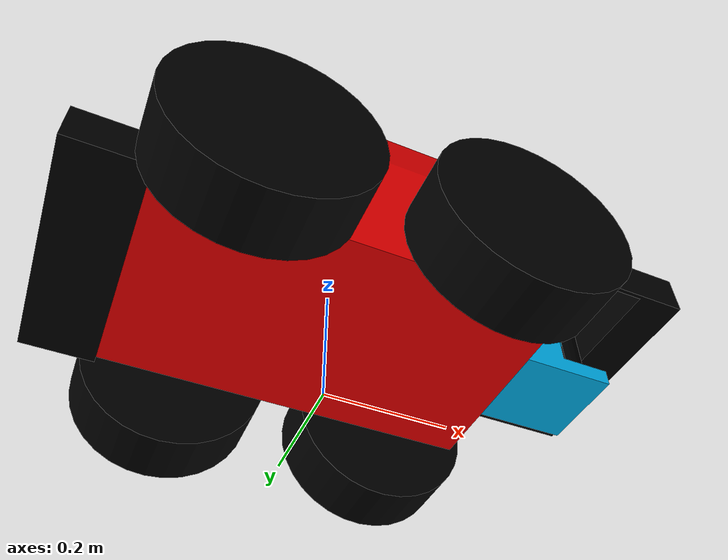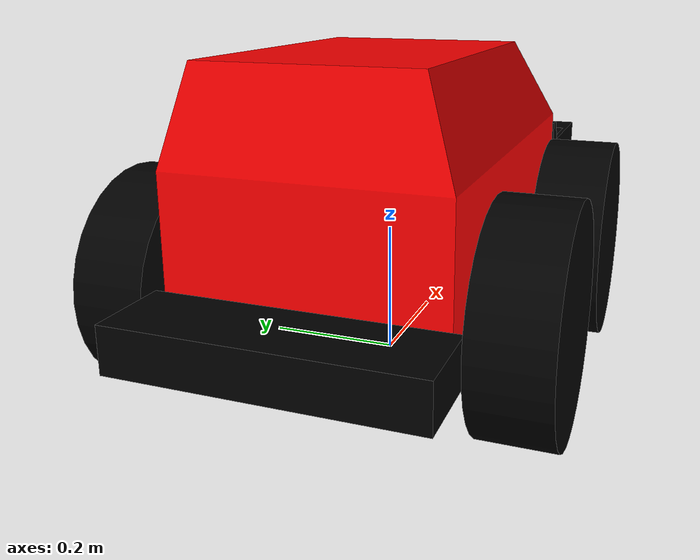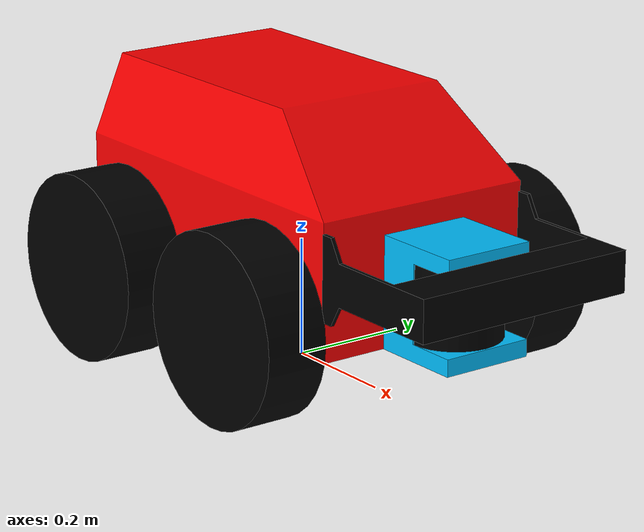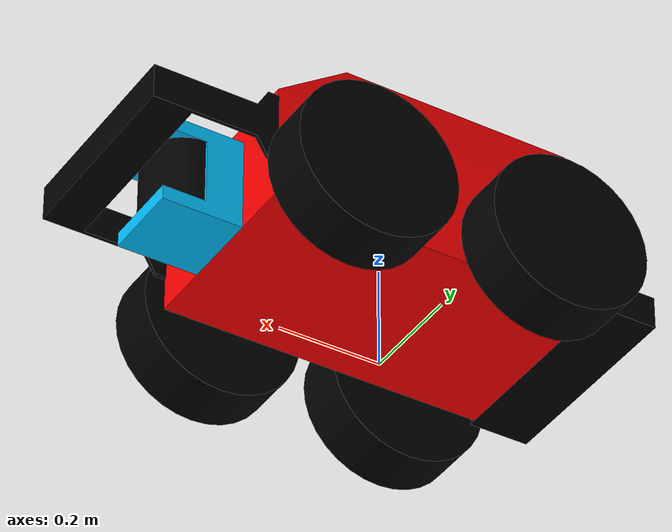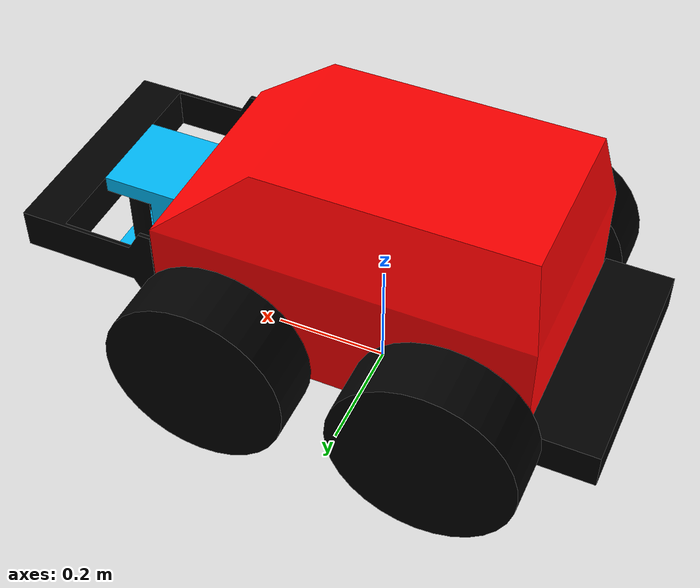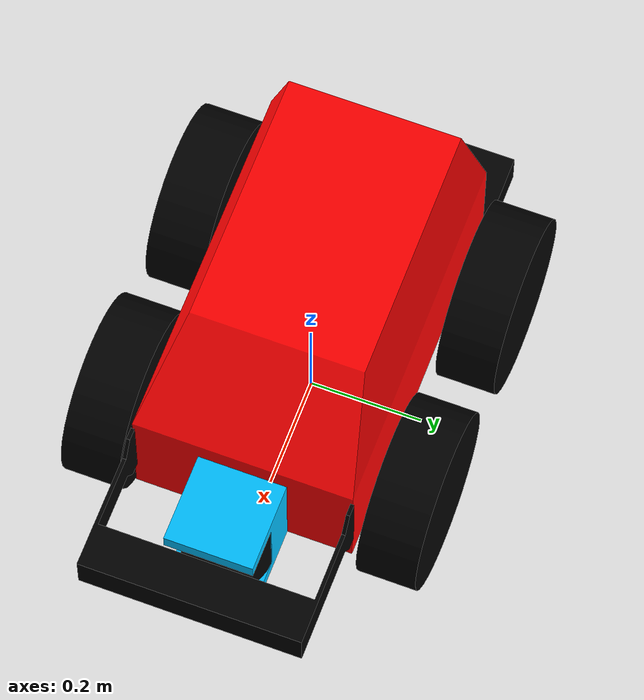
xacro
<?xml version="1.0"?>
<!-- Chassis Width: 0.387m -->
<!-- Chassis Length: 0.642m -->
<!-- Chassis Height: 0.224m -->
<!-- Wheel Diameter: 0.315m -->
<!-- Wheel Width: 0.105m -->
<!-- Wheel to Body: 0.125m -->
<!-- Axle Distance: 0.386m -->
<!-- Calculation 1: 0.1185m (0.237 / 2) -->
<!-- Calculation 2: 0.193m (0.386 / 2) -->
<!-- Calculation 3: 0.2635m (0.387 / 2 + 0.07) -->

<!-- Front Lidar Width: 0.155m -->
<!-- Front Lidar Length: 0.155m -->
<!-- Front Lidar Height: 0.185m -->
<robot name="junior">
    <material name="black">
        <color rgba="0 0 0 1"/>
    </material>

    <material name="red">
        <color rgba="1 0 0 1"/>
    </material>

    <material name="skyblue">
        <color rgba="0.0 0.75 1.0 1.0"/>
    </material>

    <!-- Base Link -->
    <link name="base_link">

    </link>

    <!-- Chassis Link -->
    <link name="Chassis">
        <visual>
            <geometry>
                <mesh filename="/home/csrobot/junior_ws/src/junior_description/meshes/robitChassis.stl"/>
            </geometry>
            <material name="red"/>
        </visual>
        <collision>
            <geometry>
                <mesh filename="/home/csrobot/junior_ws/src/junior_description/meshes/robitChassis.stl"/>
            </geometry>
            <material name="red"/>
        </collision>
        <inertial>
            <mass value="35"/>
            <inertia ixx="0.4" ixy="0.0" ixz="0.0" iyy="0.4" iyz="0.0" izz="0.2"/>
        </inertial>
    </link>

    <!-- Front Bumper Link -->
    <link name="FrontBumper">
        <visual>
            <geometry>
                <mesh filename="/home/csrobot/junior_ws/src/junior_description/meshes/robitFrontBumper.stl"/>
            </geometry>
            <material name="black"/>
        </visual>
        <collision>
            <geometry>
                <mesh filename="/home/csrobot/junior_ws/src/junior_description/meshes/robitFrontBumper.stl"/>
            </geometry>
            <material name="black"/>
        </collision>
        <inertial>
            <mass value="3"/>
            <inertia ixx="0.4" ixy="0.0" ixz="0.0" iyy="0.4" iyz="0.0" izz="0.2"/>
        </inertial>
    </link>

    <!-- Back Bumper Link -->
    <link name="BackBumper">
        <visual>
            <geometry>
                <mesh filename="/home/csrobot/junior_ws/src/junior_description/meshes/robitBackBumper.stl"/>
            </geometry>
            <material name="black"/>
        </visual>
        <collision>
            <geometry>
                <mesh filename="/home/csrobot/junior_ws/src/junior_description/meshes/robitBackBumper.stl"/>
            </geometry>
            <material name="black"/>
        </collision>
        <inertial>
            <mass value="1.5"/>
            <inertia ixx="0.4" ixy="0.0" ixz="0.0" iyy="0.4" iyz="0.0" izz="0.2"/>
        </inertial>
    </link>

    <!-- Front Lidar Link -->
    <link name="FrontLidar">
        <visual>
            <geometry>
                <mesh filename="/home/csrobot/junior_ws/src/junior_description/meshes/robitFrontLidarCase.stl"/>
            </geometry>
            <material name="skyblue"/>
        </visual>
        <collision>
            <geometry>
                <mesh filename="/home/csrobot/junior_ws/src/junior_description/meshes/robitFrontLidarCase.stl"/>
            </geometry>
            <material name="skyblue"/>
        </collision>
        <inertial>
            <mass value="2"/>
            <inertia ixx="0.4" ixy="0.0" ixz="0.0" iyy="0.4" iyz="0.0" izz="0.2"/>
        </inertial>
    </link>

    <!-- Front Lidar Glass Link -->
    <link name="FrontLidarGlass">
        <visual>
            <geometry>
                <mesh filename="/home/csrobot/junior_ws/src/junior_description/meshes/robitFrontLidarGlass.stl"/>
            </geometry>
            <material name="black"/>
        </visual>
        <collision>
            <geometry>
                <mesh filename="/home/csrobot/junior_ws/src/junior_description/meshes/robitFrontLidarGlass.stl"/>
            </geometry>
            <material name="black"/>
        </collision>
        <inertial>
            <mass value="0.1"/>
            <inertia ixx="0.4" ixy="0.0" ixz="0.0" iyy="0.4" iyz="0.0" izz="0.2"/>
        </inertial>
    </link>

    <!-- Left Front Link -->
    <link name="WheelLeftFront">
        <visual>
            <geometry>
                <mesh filename="/home/csrobot/junior_ws/src/junior_description/meshes/robitWheel.stl"/>
            </geometry>
            <material name="black"/>
        </visual>
        <collision>
            <geometry>
                <mesh filename="/home/csrobot/junior_ws/src/junior_description/meshes/robitWheel.stl"/>
            </geometry>
            <material name="black"/>
        </collision>
        <inertial>
            <mass value="5"/>
            <inertia ixx="0.4" ixy="0.0" ixz="0.0" iyy="0.4" iyz="0.0" izz="0.2"/>
        </inertial>
    </link>

    <!-- Right Front Link -->
    <link name="WheelRightFront">
        <visual>
            <geometry>
                <mesh filename="/home/csrobot/junior_ws/src/junior_description/meshes/robitWheel.stl"/>
            </geometry>
            <material name="black"/>
        </visual>
        <collision>
            <geometry>
                <mesh filename="/home/csrobot/junior_ws/src/junior_description/meshes/robitWheel.stl"/>
            </geometry>
            <material name="black"/>
        </collision>
        <inertial>
            <mass value="5"/>
            <inertia ixx="0.4" ixy="0.0" ixz="0.0" iyy="0.4" iyz="0.0" izz="0.2"/>
        </inertial>
    </link>

    <!-- Left Back Link -->
    <link name="WheelLeftBack">
        <visual>
            <geometry>
                <mesh filename="/home/csrobot/junior_ws/src/junior_description/meshes/robitWheel.stl"/>
            </geometry>
            <material name="black"/>
        </visual>
        <collision>
            <geometry>
                <mesh filename="/home/csrobot/junior_ws/src/junior_description/meshes/robitWheel.stl"/>
            </geometry>
            <material name="black"/>
        </collision>
        <inertial>
            <mass value="5"/>
            <inertia ixx="0.4" ixy="0.0" ixz="0.0" iyy="0.4" iyz="0.0" izz="0.2"/>
        </inertial>
    </link>

    <!-- Right Back Link -->
    <link name="WheelRightBack">
        <visual>
            <geometry>
                <mesh filename="/home/csrobot/junior_ws/src/junior_description/meshes/robitWheel.stl"/>
            </geometry>
            <material name="black"/>
        </visual>
        <collision>
            <geometry>
                <mesh filename="/home/csrobot/junior_ws/src/junior_description/meshes/robitWheel.stl"/>
            </geometry>
            <material name="black"/>
        </collision>
        <inertial>
            <mass value="5"/>
            <inertia ixx="0.4" ixy="0.0" ixz="0.0" iyy="0.4" iyz="0.0" izz="0.2"/>
        </inertial>
    </link>

    <!-- START OF JOINTS -->
    <joint name="ChassisJoint" type="fixed">
        <parent link="base_link"/>
        <child link="Chassis"/>
        <origin xyz="0 0 0.23"/>
    </joint>

    <joint name="FrontLidarHolster" type="fixed">
        <parent link="Chassis"/>
        <child link="FrontLidar"/>
        <origin xyz="0.321 0 -0.0197"/>
    </joint>

    <joint name="FrontLidarVision" type="fixed">
        <parent link="FrontLidar"/>
        <child link="FrontLidarGlass"/>
        <origin xyz="0.075 0 0"/>
    </joint>

    <joint name="AxleLeftFront" type="continuous">
        <parent link="Chassis"/>
        <child link="WheelLeftFront"/>
        <origin xyz="0.193 0.2635 -0.07" rpy="0 0 0"/>
        <axis xyz="0 1 0"/>
    </joint>

    <joint name="AxleRightFront" type="continuous">
        <parent link="Chassis"/>
        <child link="WheelRightFront"/>
        <origin xyz="0.193 -0.2635 -0.07" rpy="0 0 0"/>
        <axis xyz="0 1 0"/>
    </joint>

    <joint name="AxleLeftBack" type="continuous">
        <parent link="Chassis"/>
        <child link="WheelLeftBack"/>
        <origin xyz="-0.193 0.2635 -0.07" rpy="0 0 0"/>
        <axis xyz="0 1 0"/>
    </joint>

    <joint name="AxleRightBack" type="continuous">
        <parent link="Chassis"/>
        <child link="WheelRightBack"/>
        <origin xyz="-0.193 -0.2635 -0.07" rpy="0 0 0"/>
        <axis xyz="0 1 0"/>
    </joint>

    <joint name="FrontBumperLoc" type="fixed">
        <parent link="Chassis"/>
        <child link="FrontBumper"/>
        <origin xyz="0.321 0 0.025" rpy="0 0 0"/>
    </joint>

    <joint name="BackBumperLoc" type="fixed">
        <parent link="Chassis"/>
        <child link="BackBumper"/>
        <origin xyz="-0.321 0 -0.0795" rpy="0 0 0"/>
    </joint>
    <!-- END OF JOINTS -->

    <!-- Back bumper offset, required z amount to be at bottom of chassis and length / 2 for x-->

    <gazebo reference="FrontLidarGlass">
        <sensor name="laser" type="ray">
            <pose> 0 0 0 0 0 0 </pose>
            <visualize>true</visualize>
            <update_rate>10</update_rate>
            <ray>
                <scan>
                    <horizontal>
                    <samples>270</samples>
                    <min_angle>-2.35</min_angle>
                    <max_angle>2.35</max_angle>
                    </horizontal>
                </scan>
                <range>
                    Range Unknown as of Now, Using Default Values
                    <min>0.3</min>
                    <max>12</max>
                </range>
            </ray>
            <plugin name="fl_controller" filename="libgazebo_ros_ray_sensor.so">
                <ros>
                    <argument>-/out:=scan</argument>
                </ros>
                <output_type>sensor_msgs/LaserScan</output_type>
                <frame_name>FrontLidarGlass</frame_name>
            </plugin>
        </sensor>
    </gazebo>
</robot>
